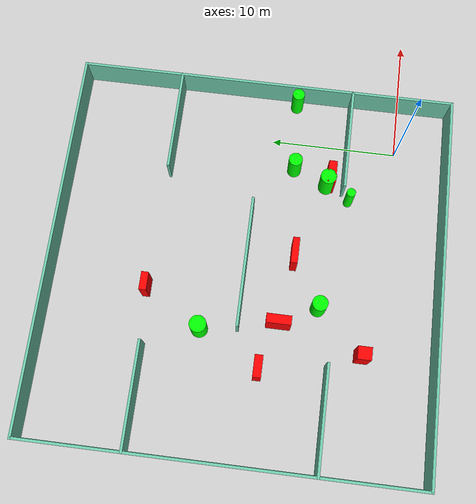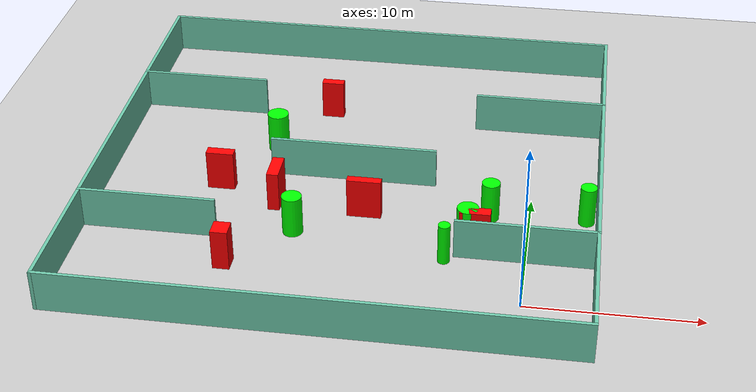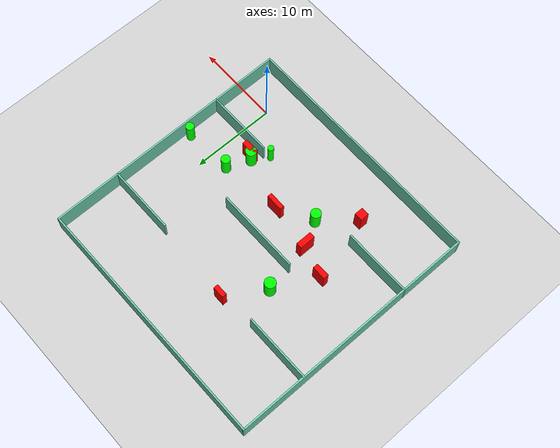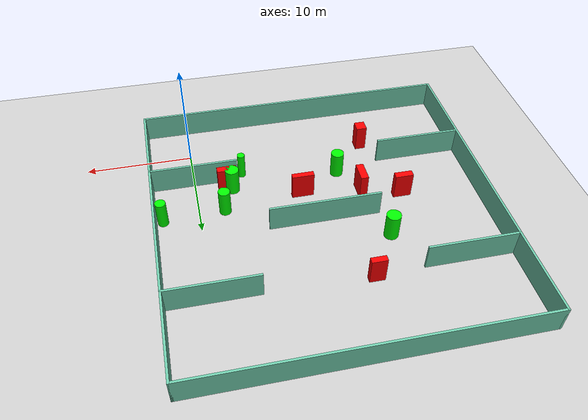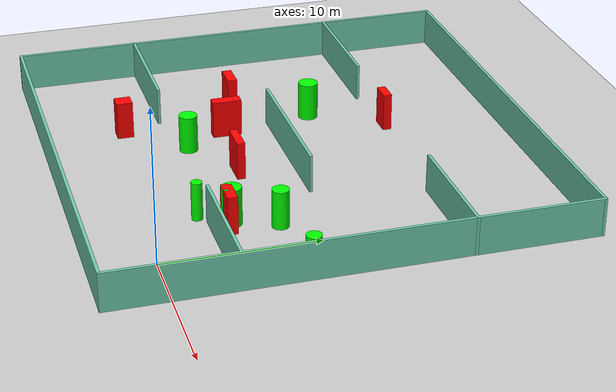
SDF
<sdf version="1.7">
 <world name="default">
  <light name="sun" type="directional">
   <pose>0 0 10 0 -0 0</pose>
   <diffuse>0.8 0.8 0.8 1</diffuse>
   <specular>0.2 0.2 0.2 1</specular>
   <attenuation>
    <range>1000</range>
    <constant>0.9</constant>
    <linear>0.01</linear>
    <quadratic>0.001</quadratic>
   </attenuation>
   <direction>-0.5 0.1 -0.9</direction>
   <spot><inner_angle>0</inner_angle><outer_angle>0</outer_angle><falloff>0</falloff></spot>
  </light>
  <model name="ground_plane">
   <static>1</static>
   <link name="link">
    <collision name="collision">
     <geometry><plane><normal>0 0 1</normal><size>100 100</size></plane></geometry>
     <surface>
      <contact><collide_bitmask>65535</collide_bitmask></contact>
      <friction><ode><mu>100</mu><mu2>50</mu2></ode></friction>
     </surface>
    </collision>
    <visual name="visual">
     <cast_shadows>0</cast_shadows>
     <geometry><plane><normal>0 0 1</normal><size>100 100</size></plane></geometry>
     <material>
      <script><uri>file://media/materials/scripts/gazebo.material</uri><name>Gazebo/Grey</name></script>
     </material>
    </visual>
   </link>
  </model>
  <gravity>0 0 -9.8</gravity>
  <magnetic_field>6e-06 2.3e-05 -4.2e-05</magnetic_field>
  <atmosphere type="adiabatic"/>
  <physics type="ode">
   <max_step_size>0.001</max_step_size>
   <real_time_factor>1</real_time_factor>
   <real_time_update_rate>1000</real_time_update_rate>
  </physics>
  <scene><ambient>0.4 0.4 0.4 1</ambient><background>0.7 0.7 0.7 1</background><shadows>1</shadows></scene>
  <spherical_coordinates>
   <surface_model>EARTH_WGS84</surface_model>
   <latitude_deg>0</latitude_deg>
   <longitude_deg>0</longitude_deg>
   <elevation>0</elevation>
   <heading_deg>0</heading_deg>
  </spherical_coordinates>
  <model name="my_base_walls">
   <link name="Wall_10">
    <collision name="Wall_10_Collision">
     <geometry><box><size>8.2 0.2 2.5</size></box></geometry>
     <pose>0 0 1.25 0 -0 0</pose>
    </collision>
    <visual name="Wall_10_Visual">
     <pose>0 0 1.25 0 -0 0</pose>
     <geometry><box><size>8.2 0.2 2.5</size></box></geometry>
     <material>
      <script><uri>file://media/materials/scripts/gazebo.material</uri><name>Gazebo/Grey</name></script>
      <ambient>0.435294 0.796078 0.67451 1</ambient>
     </material>
     <meta><layer>0</layer></meta>
    </visual>
    <pose>-11 -7 0 0 -0 0</pose>
   </link>
   <link name="Wall_12">
    <collision name="Wall_12_Collision">
     <geometry><box><size>8.2 0.2 2.5</size></box></geometry>
     <pose>0 0 1.25 0 -0 0</pose>
    </collision>
    <visual name="Wall_12_Visual">
     <pose>0 0 1.25 0 -0 0</pose>
     <geometry><box><size>8.2 0.2 2.5</size></box></geometry>
     <material>
      <script><uri>file://media/materials/scripts/gazebo.material</uri><name>Gazebo/Grey</name></script>
      <ambient>0.435294 0.796078 0.67451 1</ambient>
     </material>
     <meta><layer>0</layer></meta>
    </visual>
    <pose>-11 7 0 0 -0 0</pose>
   </link>
   <link name="Wall_14">
    <collision name="Wall_14_Collision">
     <geometry><box><size>8.2 0.2 2.5</size></box></geometry>
     <pose>0 0 1.25 0 -0 0</pose>
    </collision>
    <visual name="Wall_14_Visual">
     <pose>0 0 1.25 0 -0 0</pose>
     <geometry><box><size>8.2 0.2 2.5</size></box></geometry>
     <material>
      <script><uri>file://media/materials/scripts/gazebo.material</uri><name>Gazebo/Grey</name></script>
      <ambient>0.435294 0.796078 0.67451 1</ambient>
     </material>
     <meta><layer>0</layer></meta>
    </visual>
    <pose>11 7 0 0 -0 3.14159</pose>
   </link>
   <link name="Wall_16">
    <collision name="Wall_16_Collision">
     <geometry><box><size>10.2 0.2 2.5</size></box></geometry>
     <pose>0 0 1.25 0 -0 0</pose>
    </collision>
    <visual name="Wall_16_Visual">
     <pose>0 0 1.25 0 -0 0</pose>
     <geometry><box><size>10.2 0.2 2.5</size></box></geometry>
     <material>
      <script><uri>file://media/materials/scripts/gazebo.material</uri><name>Gazebo/Grey</name></script>
      <ambient>0.435294 0.796078 0.67451 1</ambient>
     </material>
     <meta><layer>0</layer></meta>
    </visual>
    <pose>0 0 0 0 -0 3.14159</pose>
   </link>
   <link name="Wall_2">
    <collision name="Wall_2_Collision">
     <geometry><box><size>30.2 0.2 2.5</size></box></geometry>
     <pose>0 0 1.25 0 -0 0</pose>
    </collision>
    <visual name="Wall_2_Visual">
     <pose>0 0 1.25 0 -0 0</pose>
     <geometry><box><size>30.2 0.2 2.5</size></box></geometry>
     <material>
      <script><uri>file://media/materials/scripts/gazebo.material</uri><name>Gazebo/Grey</name></script>
      <ambient>0.435294 0.796078 0.67451 1</ambient>
     </material>
     <meta><layer>0</layer></meta>
    </visual>
    <pose>0 -15 0 0 -0 3.14159</pose>
   </link>
   <link name="Wall_3">
    <collision name="Wall_3_Collision">
     <geometry><box><size>30.2 0.2 2.5</size></box></geometry>
     <pose>0 0 1.25 0 -0 0</pose>
    </collision>
    <visual name="Wall_3_Visual">
     <pose>0 0 1.25 0 -0 0</pose>
     <geometry><box><size>30.2 0.2 2.5</size></box></geometry>
     <material>
      <script><uri>file://media/materials/scripts/gazebo.material</uri><name>Gazebo/Grey</name></script>
      <ambient>0.435294 0.796078 0.67451 1</ambient>
     </material>
     <meta><layer>0</layer></meta>
    </visual>
    <pose>-15 0 0 0 -0 1.5708</pose>
   </link>
   <link name="Wall_4">
    <collision name="Wall_4_Collision">
     <geometry><box><size>30.2 0.2 2.5</size></box></geometry>
     <pose>0 0 1.25 0 -0 0</pose>
    </collision>
    <visual name="Wall_4_Visual">
     <pose>0 0 1.25 0 -0 0</pose>
     <geometry><box><size>30.2 0.2 2.5</size></box></geometry>
     <material>
      <script><uri>file://media/materials/scripts/gazebo.material</uri><name>Gazebo/Grey</name></script>
      <ambient>0.435294 0.796078 0.67451 1</ambient>
     </material>
     <meta><layer>0</layer></meta>
    </visual>
    <pose>0 15 0 0 -0 0</pose>
   </link>
   <link name="Wall_6">
    <collision name="Wall_6_Collision">
     <geometry><box><size>30.2 0.2 2.5</size></box></geometry>
     <pose>0 0 1.25 0 -0 0</pose>
    </collision>
    <visual name="Wall_6_Visual">
     <pose>0 0 1.25 0 -0 0</pose>
     <geometry><box><size>30.2 0.2 2.5</size></box></geometry>
     <material>
      <script><uri>file://media/materials/scripts/gazebo.material</uri><name>Gazebo/Grey</name></script>
      <ambient>0.435294 0.796078 0.67451 1</ambient>
     </material>
     <meta><layer>0</layer></meta>
    </visual>
    <pose>15 0 0 0 -0 1.5708</pose>
   </link>
   <link name="Wall_8">
    <collision name="Wall_8_Collision">
     <geometry><box><size>8.2 0.2 2.5</size></box></geometry>
     <pose>0 0 1.25 0 -0 0</pose>
    </collision>
    <visual name="Wall_8_Visual">
     <pose>0 0 1.25 0 -0 0</pose>
     <geometry><box><size>8.2 0.2 2.5</size></box></geometry>
     <material>
      <script><uri>file://media/materials/scripts/gazebo.material</uri><name>Gazebo/Grey</name></script>
      <ambient>0.435294 0.796078 0.67451 1</ambient>
     </material>
     <meta><layer>0</layer></meta>
    </visual>
    <pose>11 -7 0 0 -0 3.14159</pose>
   </link>
   <static>1</static>
   <pose>-11 11 0 0 -0 0</pose>
  </model>
  <model name="cylinder1">
   <static>1</static>
   <link name="link">
    <inertial>
     <mass>1</mass>
     <inertia><ixx>0.5</ixx><ixy>0</ixy><ixz>0</ixz><iyy>0.5</iyy><iyz>0</iyz><izz>1</izz></inertia>
    </inertial>
    <collision name="collision">
     <geometry><cylinder><radius>0.3519949507889368</radius><length>2.5</length></cylinder></geometry>
    </collision>
    <visual name="visual">
     <geometry><cylinder><radius>0.3519949507889368</radius><length>2.5</length></cylinder></geometry>
     <material>
      <ambient>0 1 0 1</ambient>
      <diffuse>0 1 0 1</diffuse>
      <specular>0.1 0.1 0.1 1</specular>
      <emissive>0 0 0 0</emissive>
     </material>
    </visual>
   </link>
   <pose>-4.5927536327607115 3.4546084806226647 1.25 0 0 0</pose>
  </model>
  <model name="cylinder2">
   <static>1</static>
   <link name="link">
    <inertial>
     <mass>1</mass>
     <inertia><ixx>0.5</ixx><ixy>0</ixy><ixz>0</ixz><iyy>0.5</iyy><iyz>0</iyz><izz>1</izz></inertia>
    </inertial>
    <collision name="collision">
     <geometry><cylinder><radius>0.6532126457548828</radius><length>2.5</length></cylinder></geometry>
    </collision>
    <visual name="visual">
     <geometry><cylinder><radius>0.6532126457548828</radius><length>2.5</length></cylinder></geometry>
     <material>
      <ambient>0 1 0 1</ambient>
      <diffuse>0 1 0 1</diffuse>
      <specular>0.1 0.1 0.1 1</specular>
      <emissive>0 0 0 0</emissive>
     </material>
    </visual>
   </link>
   <pose>-16.27734129711369 13.907174451654495 1.25 0 0 0</pose>
  </model>
  <model name="cylinder3">
   <static>1</static>
   <link name="link">
    <inertial>
     <mass>1</mass>
     <inertia><ixx>0.5</ixx><ixy>0</ixy><ixz>0</ixz><iyy>0.5</iyy><iyz>0</iyz><izz>1</izz></inertia>
    </inertial>
    <collision name="collision">
     <geometry><cylinder><radius>0.5993238456725546</radius><length>2.5</length></cylinder></geometry>
    </collision>
    <visual name="visual">
     <geometry><cylinder><radius>0.5993238456725546</radius><length>2.5</length></cylinder></geometry>
     <material>
      <ambient>0 1 0 1</ambient>
      <diffuse>0 1 0 1</diffuse>
      <specular>0.1 0.1 0.1 1</specular>
      <emissive>0 0 0 0</emissive>
     </material>
    </visual>
   </link>
   <pose>-13.618348711615441 5.022060209407602 1.25 0 0 0</pose>
  </model>
  <model name="cylinder4">
   <static>1</static>
   <link name="link">
    <inertial>
     <mass>1</mass>
     <inertia><ixx>0.5</ixx><ixy>0</ixy><ixz>0</ixz><iyy>0.5</iyy><iyz>0</iyz><izz>1</izz></inertia>
    </inertial>
    <collision name="collision">
     <geometry><cylinder><radius>0.6323940530001398</radius><length>2.5</length></cylinder></geometry>
    </collision>
    <visual name="visual">
     <geometry><cylinder><radius>0.6323940530001398</radius><length>2.5</length></cylinder></geometry>
     <material>
      <ambient>0 1 0 1</ambient>
      <diffuse>0 1 0 1</diffuse>
      <specular>0.1 0.1 0.1 1</specular>
      <emissive>0 0 0 0</emissive>
     </material>
    </visual>
   </link>
   <pose>-3.4468014075922646 5.315625545504746 1.25 0 0 0</pose>
  </model>
  <model name="cylinder5">
   <static>1</static>
   <link name="link">
    <inertial>
     <mass>1</mass>
     <inertia><ixx>0.5</ixx><ixy>0</ixy><ixz>0</ixz><iyy>0.5</iyy><iyz>0</iyz><izz>1</izz></inertia>
    </inertial>
    <collision name="collision">
     <geometry><cylinder><radius>0.5414685895602934</radius><length>2.5</length></cylinder></geometry>
    </collision>
    <visual name="visual">
     <geometry><cylinder><radius>0.5414685895602934</radius><length>2.5</length></cylinder></geometry>
     <material>
      <ambient>0 1 0 1</ambient>
      <diffuse>0 1 0 1</diffuse>
      <specular>0.1 0.1 0.1 1</specular>
      <emissive>0 0 0 0</emissive>
     </material>
    </visual>
   </link>
   <pose>-2.3481725804357616 8.042136631059387 1.25 0 0 0</pose>
  </model>
  <model name="cylinder6">
   <static>1</static>
   <link name="link">
    <inertial>
     <mass>1</mass>
     <inertia><ixx>0.5</ixx><ixy>0</ixy><ixz>0</ixz><iyy>0.5</iyy><iyz>0</iyz><izz>1</izz></inertia>
    </inertial>
    <collision name="collision">
     <geometry><cylinder><radius>0.4840388888013172</radius><length>2.5</length></cylinder></geometry>
    </collision>
    <visual name="visual">
     <geometry><cylinder><radius>0.4840388888013172</radius><length>2.5</length></cylinder></geometry>
     <material>
      <ambient>0 1 0 1</ambient>
      <diffuse>0 1 0 1</diffuse>
      <specular>0.1 0.1 0.1 1</specular>
      <emissive>0 0 0 0</emissive>
     </material>
    </visual>
   </link>
   <pose>3.3270781369957554 8.381413951789682 1.25 0 0 0</pose>
  </model>
  <model name="box1">
   <static>1</static>
   <link name="link">
    <inertial>
     <mass>1</mass>
     <inertia><ixx>0.083</ixx><ixy>0</ixy><ixz>0</ixz><iyy>0.083</iyy><iyz>0</iyz><izz>0.083</izz></inertia>
    </inertial>
    <collision name="collision">
     <geometry><box><size>1.672652286337728 0.6357560545840995 2.5</size></box></geometry>
    </collision>
    <visual name="visual">
     <geometry><box><size>1.672652286337728 0.6357560545840995 2.5</size></box></geometry>
     <material>
      <ambient>1 0 0 1</ambient>
      <diffuse>1 0 0 1</diffuse>
      <specular>0.1 0.1 0.1 1</specular>
      <emissive>0 0 0 0</emissive>
     </material>
    </visual>
    <sensor name="my_contact" type="contact">
     <contact><collision>box_collision</collision><topic>__default_topic__</topic></contact>
    </sensor>
   </link>
   <pose>-18.81473906133679 9.108291804697924 1.25 0 0 0</pose>
  </model>
  <model name="box2">
   <static>1</static>
   <link name="link">
    <inertial>
     <mass>1</mass>
     <inertia><ixx>0.083</ixx><ixy>0</ixy><ixz>0</ixz><iyy>0.083</iyy><iyz>0</iyz><izz>0.083</izz></inertia>
    </inertial>
    <collision name="collision">
     <geometry><box><size>0.7072863009768181 1.9081397966148594 2.5</size></box></geometry>
    </collision>
    <visual name="visual">
     <geometry><box><size>0.7072863009768181 1.9081397966148594 2.5</size></box></geometry>
     <material>
      <ambient>1 0 0 1</ambient>
      <diffuse>1 0 0 1</diffuse>
      <specular>0.1 0.1 0.1 1</specular>
      <emissive>0 0 0 0</emissive>
     </material>
    </visual>
    <sensor name="my_contact" type="contact">
     <contact><collision>box_collision</collision><topic>__default_topic__</topic></contact>
    </sensor>
   </link>
   <pose>-15.187391526800539 7.954351284917603 1.25 0 0 0</pose>
  </model>
  <model name="box3">
   <static>1</static>
   <link name="link">
    <inertial>
     <mass>1</mass>
     <inertia><ixx>0.083</ixx><ixy>0</ixy><ixz>0</ixz><iyy>0.083</iyy><iyz>0</iyz><izz>0.083</izz></inertia>
    </inertial>
    <collision name="collision">
     <geometry><box><size>0.9844672263007743 1.0639452900737048 2.5</size></box></geometry>
    </collision>
    <visual name="visual">
     <geometry><box><size>0.9844672263007743 1.0639452900737048 2.5</size></box></geometry>
     <material>
      <ambient>1 0 0 1</ambient>
      <diffuse>1 0 0 1</diffuse>
      <specular>0.1 0.1 0.1 1</specular>
      <emissive>0 0 0 0</emissive>
     </material>
    </visual>
    <sensor name="my_contact" type="contact">
     <contact><collision>box_collision</collision><topic>__default_topic__</topic></contact>
    </sensor>
   </link>
   <pose>-16.918678038521335 1.42521623164847 1.25 0 0 0</pose>
  </model>
  <model name="box4">
   <static>1</static>
   <link name="link">
    <inertial>
     <mass>1</mass>
     <inertia><ixx>0.083</ixx><ixy>0</ixy><ixz>0</ixz><iyy>0.083</iyy><iyz>0</iyz><izz>0.083</izz></inertia>
    </inertial>
    <collision name="collision">
     <geometry><box><size>1.778360587307087 0.6573798065158799 2.5</size></box></geometry>
    </collision>
    <visual name="visual">
     <geometry><box><size>1.778360587307087 0.6573798065158799 2.5</size></box></geometry>
     <material>
      <ambient>1 0 0 1</ambient>
      <diffuse>1 0 0 1</diffuse>
      <specular>0.1 0.1 0.1 1</specular>
      <emissive>0 0 0 0</emissive>
     </material>
    </visual>
    <sensor name="my_contact" type="contact">
     <contact><collision>box_collision</collision><topic>__default_topic__</topic></contact>
    </sensor>
   </link>
   <pose>-2.99587173010924 5.062026997792829 1.25 0 0 0</pose>
  </model>
  <model name="box5">
   <static>1</static>
   <link name="link">
    <inertial>
     <mass>1</mass>
     <inertia><ixx>0.083</ixx><ixy>0</ixy><ixz>0</ixz><iyy>0.083</iyy><iyz>0</iyz><izz>0.083</izz></inertia>
    </inertial>
    <collision name="collision">
     <geometry><box><size>2.0374234070847317 0.5220790765525867 2.5</size></box></geometry>
    </collision>
    <visual name="visual">
     <geometry><box><size>2.0374234070847317 0.5220790765525867 2.5</size></box></geometry>
     <material>
      <ambient>1 0 0 1</ambient>
      <diffuse>1 0 0 1</diffuse>
      <specular>0.1 0.1 0.1 1</specular>
      <emissive>0 0 0 0</emissive>
     </material>
    </visual>
    <sensor name="my_contact" type="contact">
     <contact><collision>box_collision</collision><topic>__default_topic__</topic></contact>
    </sensor>
   </link>
   <pose>-9.745353873316077 7.296579613969687 1.25 0 0 0</pose>
  </model>
  <model name="box6">
   <static>1</static>
   <link name="link">
    <inertial>
     <mass>1</mass>
     <inertia><ixx>0.083</ixx><ixy>0</ixy><ixz>0</ixz><iyy>0.083</iyy><iyz>0</iyz><izz>0.083</izz></inertia>
    </inertial>
    <collision name="collision">
     <geometry><box><size>1.392584213625129 0.555038609311107 2.5</size></box></geometry>
    </collision>
    <visual name="visual">
     <geometry><box><size>1.392584213625129 0.555038609311107 2.5</size></box></geometry>
     <material>
      <ambient>1 0 0 1</ambient>
      <diffuse>1 0 0 1</diffuse>
      <specular>0.1 0.1 0.1 1</specular>
      <emissive>0 0 0 0</emissive>
     </material>
    </visual>
    <sensor name="my_contact" type="contact">
     <contact><collision>box_collision</collision><topic>__default_topic__</topic></contact>
    </sensor>
   </link>
   <pose>-13.536407410853613 18.398534205677706 1.25 0 0 0</pose>
  </model>
 </world>
</sdf>
